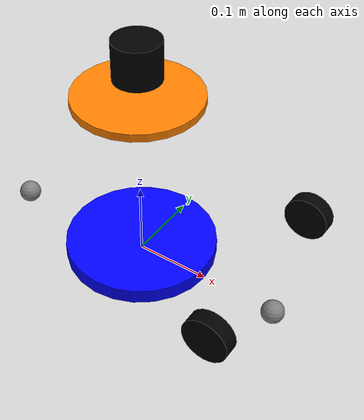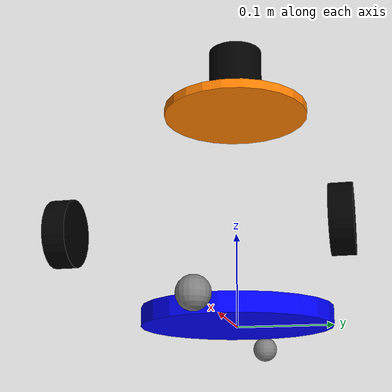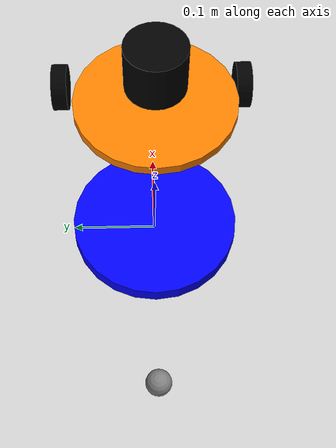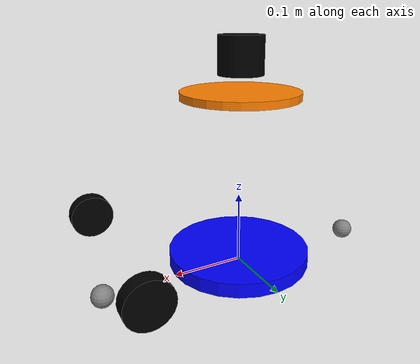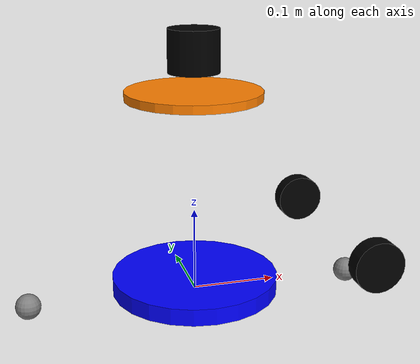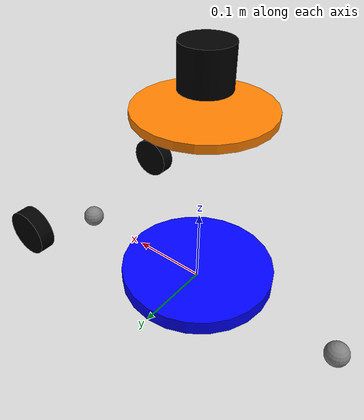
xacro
<?xml version="1.0"?>
<robot xmlns:xacro="http://www.ros.org/wiki/xacro"  name="robot">

  <!-- BASE LINK -->
  <link name="base_link">
    <visual>
      <geometry>
        <cylinder radius="0.10" length="0.02"/> <!-- 20cm diameter base chassis -->
      </geometry>
      <origin xyz="0 0 0.01" rpy="0 0 0"/>
      <material name="blue">
        <color rgba="0 0 1 1"/>
      </material>
    </visual>
  </link>

  <!-- LEFT WHEEL -->
  <link name="left_wheel">
    <visual>
      <geometry>
        <cylinder radius="0.03" length="0.02"/>
      </geometry>
      <origin xyz="0.09 0.06 0.03" rpy="1.5708 0 0"/>
      <material name="black">
        <color rgba="0 0 0 1"/>
      </material>
    </visual>
  </link>

  <joint name="left_wheel_joint" type="continuous">
    <parent link="base_link"/>
    <child link="left_wheel"/>
    <origin xyz="0.09 0.06 0.03" rpy="0 0 0"/>
    <axis xyz="0 1 0"/>
  </joint>
   <!-- RIGHT WHEEL -->
  <link name="right_wheel">
    <visual>
      <geometry>
        <cylinder radius="0.03" length="0.02"/>
      </geometry>
      <origin xyz="0.09 -0.06 0.03" rpy="1.5708 0 0"/>
      <material name="black"/>
    </visual>
  </link>

  <joint name="right_wheel_joint" type="continuous">
    <parent link="base_link"/>
    <child link="right_wheel"/>
    <origin xyz="0.09 -0.06 0.03" rpy="0 0 0"/>
    <axis xyz="0 1 0"/>
  </joint>
  <!-- FRONT CASTER -->
  <link name="front_caster">
    <visual>
      <geometry>
        <sphere radius="0.015"/>
      </geometry>
      <origin xyz="0.1 0 0" rpy="0 0 0"/>
      <material name="gray">
        <color rgba="0.5 0.5 0.5 1"/>
      </material>
    </visual>
  </link>

  <joint name="front_caster_joint" type="fixed">
    <parent link="base_link"/>
    <child link="front_caster"/>
    <origin xyz="0.1 0 0" rpy="0 0 0"/>
  </joint>
 <!-- REAR CASTER -->
  <link name="rear_caster">
    <visual>
      <geometry>
        <sphere radius="0.015"/>
      </geometry>
      <origin xyz="-0.1 0 0" rpy="0 0 0"/>
      <material name="gray"/>
    </visual>
  </link>

  <joint name="rear_caster_joint" type="fixed">
    <parent link="base_link"/>
    <child link="rear_caster"/>
    <origin xyz="-0.1 0 0" rpy="0 0 0"/>
  </joint>

  <!-- TOP CHASSIS WITH LIDAR -->
  <link name="top_plate">
    <visual>
      <geometry>
        <cylinder radius="0.08" length="0.01"/> <!-- slightly smaller t-->
           </geometry>
      <origin xyz="0 0 0.12" rpy="0 0 0"/>
      <material name="orange">
        <color rgba="1 0.5 0 1"/>
      </material>
    </visual>
  </link>

  <joint name="top_plate_joint" type="fixed">
    <parent link="base_link"/>
    <child link="top_plate"/>
    <origin xyz="0 0 0.12" rpy="0 0 0"/>
  </joint>

  <!-- LIDAR -->
  <link name="lidar">
    <visual>
      <geometry>
        <cylinder radius="0.03" length="0.05"/>
      </geometry>
      <origin xyz="0 0 0.145" rpy="0 0 0"/>
      <material name="black"/>
    </visual>
  </link>

  <joint name="lidar_joint" type="fixed">
    <parent link="top_plate"/>
    <child link="lidar"/>
    <origin xyz="0 0 0.025" rpy="0 0 0"/>
  </joint>
</robot>
